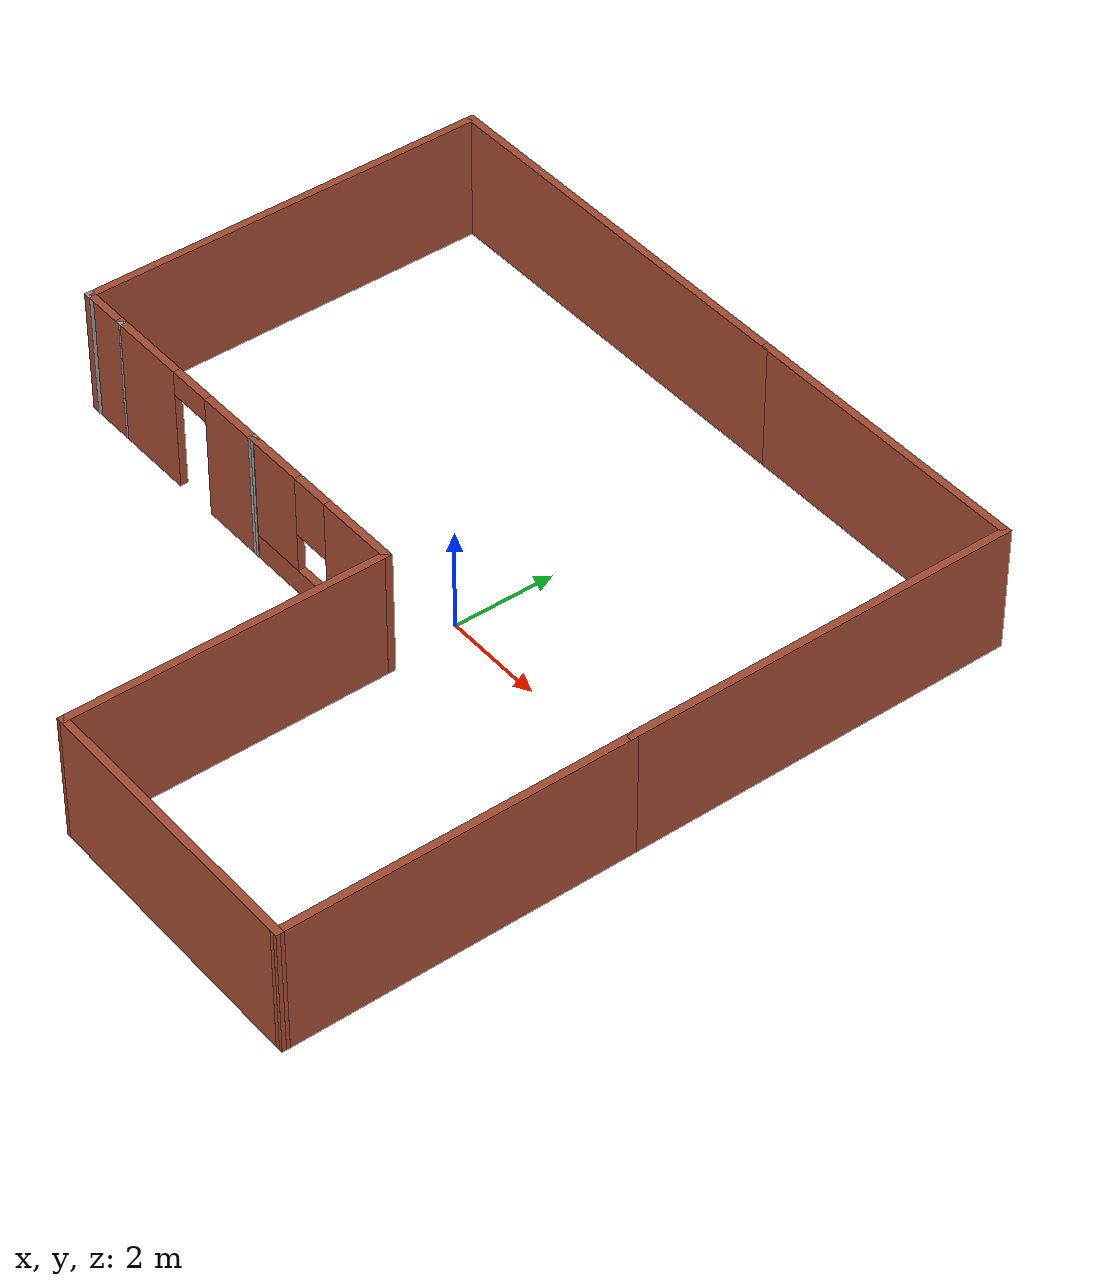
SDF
<?xml version='1.0'?>
<sdf version='1.6'>
  <model name='firstdemo'>
    <pose frame=''>-1.21384 -0.498173 0 0 -0 0</pose>
    <link name='Wall_14'>
      <collision name='Wall_14_Collision'>
        <geometry>
          <box>
            <size>8.25 0.15 2.5</size>
          </box>
        </geometry>
        <pose frame=''>0 0 1.25 0 -0 0</pose>
      </collision>
      <visual name='Wall_14_Visual'>
        <pose frame=''>0 0 1.25 0 -0 0</pose>
        <geometry>
          <box>
            <size>8.25 0.15 2.5</size>
          </box>
        </geometry>
        <material>
          <script>
            <uri>file://media/materials/scripts/gazebo.material</uri>
            <name>Gazebo/Bricks</name>
          </script>
          <ambient>0.996078 0.47451 0.0196078 1</ambient>
        </material>
        <meta>
          <layer>0</layer>
        </meta>
      </visual>
      <pose frame=''>-2.92516 7.11317 0 0 -0 0</pose>
    </link>
    <link name='Wall_15'>
      <collision name='Wall_15_Collision'>
        <geometry>
          <box>
            <size>6 0.15 2.5</size>
          </box>
        </geometry>
        <pose frame=''>0 0 1.25 0 -0 0</pose>
      </collision>
      <visual name='Wall_15_Visual'>
        <pose frame=''>0 0 1.25 0 -0 0</pose>
        <geometry>
          <box>
            <size>6 0.15 2.5</size>
          </box>
        </geometry>
        <material>
          <script>
            <uri>file://media/materials/scripts/gazebo.material</uri>
            <name>Gazebo/Bricks</name>
          </script>
          <ambient>0.996078 0.47451 0.0196078 1</ambient>
        </material>
        <meta>
          <layer>0</layer>
        </meta>
      </visual>
      <pose frame=''>4.04984 7.11317 0 0 -0 0</pose>
    </link>
    <link name='Wall_16'>
      <collision name='Wall_16_Collision'>
        <geometry>
          <box>
            <size>7.776 0.15 2.5</size>
          </box>
        </geometry>
        <pose frame=''>0 0 1.25 0 -0 0</pose>
      </collision>
      <visual name='Wall_16_Visual'>
        <pose frame=''>0 0 1.25 0 -0 0</pose>
        <geometry>
          <box>
            <size>7.776 0.15 2.5</size>
          </box>
        </geometry>
        <material>
          <script>
            <uri>file://media/materials/scripts/gazebo.material</uri>
            <name>Gazebo/Bricks</name>
          </script>
          <ambient>0.996078 0.47451 0.0196078 1</ambient>
        </material>
        <meta>
          <layer>0</layer>
        </meta>
      </visual>
      <pose frame=''>6.97484 3.30017 0 0 -0 -1.5708</pose>
    </link>
    <link name='Wall_17'>
      <collision name='Wall_17_Collision'>
        <geometry>
          <box>
            <size>6.75006 0.15 2.5</size>
          </box>
        </geometry>
        <pose frame=''>0 0 1.25 0 -0 0</pose>
      </collision>
      <visual name='Wall_17_Visual'>
        <pose frame=''>0 0 1.25 0 -0 0</pose>
        <geometry>
          <box>
            <size>6.75006 0.15 2.5</size>
          </box>
        </geometry>
        <material>
          <script>
            <uri>file://media/materials/scripts/gazebo.material</uri>
            <name>Gazebo/Bricks</name>
          </script>
          <ambient>0.996078 0.47451 0.0196078 1</ambient>
        </material>
        <meta>
          <layer>0</layer>
        </meta>
      </visual>
      <pose frame=''>6.97484 -3.81283 0 0 -0 -1.5708</pose>
    </link>
    <link name='Wall_18'>
      <collision name='Wall_18_Collision'>
        <geometry>
          <box>
            <size>5.75 0.15 2.5</size>
          </box>
        </geometry>
        <pose frame=''>0 0 1.25 0 -0 0</pose>
      </collision>
      <visual name='Wall_18_Visual'>
        <pose frame=''>0 0 1.25 0 -0 0</pose>
        <geometry>
          <box>
            <size>5.75 0.15 2.5</size>
          </box>
        </geometry>
        <material>
          <script>
            <uri>file://media/materials/scripts/gazebo.material</uri>
            <name>Gazebo/Bricks</name>
          </script>
          <ambient>0.996078 0.47451 0.0196078 1</ambient>
        </material>
        <meta>
          <layer>0</layer>
        </meta>
      </visual>
      <pose frame=''>4.17484 -7.09983 0 0 -0 3.13695</pose>
    </link>
    <link name='Wall_19'>
      <collision name='Wall_19_Collision'>
        <geometry>
          <box>
            <size>6.25 0.15 2.5</size>
          </box>
        </geometry>
        <pose frame=''>0 0 1.25 0 -0 0</pose>
      </collision>
      <visual name='Wall_19_Visual'>
        <pose frame=''>0 0 1.25 0 -0 0</pose>
        <geometry>
          <box>
            <size>6.25 0.15 2.5</size>
          </box>
        </geometry>
        <material>
          <script>
            <uri>file://media/materials/scripts/gazebo.material</uri>
            <name>Gazebo/Bricks</name>
          </script>
          <ambient>0.996078 0.47451 0.0196078 1</ambient>
        </material>
        <meta>
          <layer>0</layer>
        </meta>
      </visual>
      <pose frame=''>1.37484 -4.03683 0 0 -0 1.5708</pose>
    </link>
    <link name='Wall_20'>
      <pose frame=''>-0.425158 -0.986827 0 0 -0 3.14159</pose>
      <visual name='Wall_20_Visual_0'>
        <pose frame=''>-1.04992 0 1.25 0 -0 0</pose>
        <geometry>
          <box>
            <size>1.65016 0.15 2.5</size>
          </box>
        </geometry>
        <material>
          <script>
            <uri>file://media/materials/scripts/gazebo.material</uri>
            <name>Gazebo/Bricks</name>
          </script>
          <ambient>0.996078 0.47451 0.0196078 1</ambient>
        </material>
        <meta>
          <layer>0</layer>
        </meta>
      </visual>
      <collision name='Wall_20_Collision_0'>
        <geometry>
          <box>
            <size>1.65016 0.15 2.5</size>
          </box>
        </geometry>
        <pose frame=''>-1.04992 0 1.25 0 -0 0</pose>
      </collision>
      <visual name='Wall_20_Visual_1'>
        <pose frame=''>0.825082 0 0.25 0 -0 0</pose>
        <geometry>
          <box>
            <size>2.09984 0.15 0.5</size>
          </box>
        </geometry>
        <material>
          <script>
            <uri>file://media/materials/scripts/gazebo.material</uri>
            <name>Gazebo/Bricks</name>
          </script>
          <ambient>0.996078 0.47451 0.0196078 1</ambient>
        </material>
        <meta>
          <layer>0</layer>
        </meta>
      </visual>
      <collision name='Wall_20_Collision_1'>
        <geometry>
          <box>
            <size>2.09984 0.15 0.5</size>
          </box>
        </geometry>
        <pose frame=''>0.825082 0 0.25 0 -0 0</pose>
      </collision>
      <visual name='Wall_20_Visual_2'>
        <pose frame=''>1.22508 0 1.5 0 -0 0</pose>
        <geometry>
          <box>
            <size>1.29984 0.15 2</size>
          </box>
        </geometry>
        <material>
          <script>
            <uri>file://media/materials/scripts/gazebo.material</uri>
            <name>Gazebo/Bricks</name>
          </script>
          <ambient>0.996078 0.47451 0.0196078 1</ambient>
        </material>
        <meta>
          <layer>0</layer>
        </meta>
      </visual>
      <collision name='Wall_20_Collision_2'>
        <geometry>
          <box>
            <size>1.29984 0.15 2</size>
          </box>
        </geometry>
        <pose frame=''>1.22508 0 1.5 0 -0 0</pose>
      </collision>
      <visual name='Wall_20_Visual_3'>
        <pose frame=''>0.175164 0 1.9 0 -0 0</pose>
        <geometry>
          <box>
            <size>0.8 0.15 1.2</size>
          </box>
        </geometry>
        <material>
          <script>
            <uri>file://media/materials/scripts/gazebo.material</uri>
            <name>Gazebo/Bricks</name>
          </script>
          <ambient>0.996078 0.47451 0.0196078 1</ambient>
        </material>
        <meta>
          <layer>0</layer>
        </meta>
      </visual>
      <collision name='Wall_20_Collision_3'>
        <geometry>
          <box>
            <size>0.8 0.15 1.2</size>
          </box>
        </geometry>
        <pose frame=''>0.175164 0 1.9 0 -0 0</pose>
      </collision>
    </link>
    <link name='Wall_21'>
      <collision name='Wall_21_Collision'>
        <geometry>
          <box>
            <size>0.16 0.15 2.5</size>
          </box>
        </geometry>
        <pose frame=''>0 0 1.25 0 -0 0</pose>
      </collision>
      <visual name='Wall_21_Visual'>
        <pose frame=''>0 0 1.25 0 -0 0</pose>
        <geometry>
          <box>
            <size>0.16 0.15 2.5</size>
          </box>
        </geometry>
        <material>
          <script>
            <uri>file://media/materials/scripts/gazebo.material</uri>
            <name>Gazebo/Grey</name>
          </script>
          <ambient>1 1 1 1</ambient>
        </material>
        <meta>
          <layer>0</layer>
        </meta>
      </visual>
      <pose frame=''>-2.22017 -0.986856 0 0 -0 -0.005994</pose>
    </link>
    <link name='Wall_22'>
      <collision name='Wall_22_Collision'>
        <geometry>
          <box>
            <size>0.16 0.15 2.5</size>
          </box>
        </geometry>
        <pose frame=''>0 0 1.25 0 -0 0</pose>
      </collision>
      <visual name='Wall_22_Visual'>
        <pose frame=''>0 0 1.25 0 -0 0</pose>
        <geometry>
          <box>
            <size>0.16 0.15 2.5</size>
          </box>
        </geometry>
        <material>
          <script>
            <uri>file://media/materials/scripts/gazebo.material</uri>
            <name>Gazebo/Grey</name>
          </script>
          <ambient>1 1 1 1</ambient>
        </material>
        <meta>
          <layer>0</layer>
        </meta>
      </visual>
      <pose frame=''>-2.21017 -0.986856 0 0 -0 0.00597</pose>
    </link>
    <link name='Wall_23'>
      <collision name='Wall_23_Collision'>
        <geometry>
          <box>
            <size>0.16 0.15 2.5</size>
          </box>
        </geometry>
        <pose frame=''>0 0 1.25 0 -0 0</pose>
      </collision>
      <visual name='Wall_23_Visual'>
        <pose frame=''>0 0 1.25 0 -0 0</pose>
        <geometry>
          <box>
            <size>0.16 0.15 2.5</size>
          </box>
        </geometry>
        <material>
          <script>
            <uri>file://media/materials/scripts/gazebo.material</uri>
            <name>Gazebo/Grey</name>
          </script>
          <ambient>1 1 1 1</ambient>
        </material>
        <meta>
          <layer>0</layer>
        </meta>
      </visual>
      <pose frame=''>-2.21017 -0.986856 0 0 -0 -3.13562</pose>
    </link>
    <link name='Wall_28'>
      <pose frame=''>-4.13016 -0.986827 0 0 -0 3.14159</pose>
      <visual name='Wall_28_Visual_0'>
        <pose frame=''>-1.30311 0 1.25 0 -0 0</pose>
        <geometry>
          <box>
            <size>1.39377 0.15 2.5</size>
          </box>
        </geometry>
        <material>
          <script>
            <uri>file://media/materials/scripts/gazebo.material</uri>
            <name>Gazebo/Bricks</name>
          </script>
          <ambient>0.996078 0.47451 0.0196078 1</ambient>
        </material>
        <meta>
          <layer>0</layer>
        </meta>
      </visual>
      <collision name='Wall_28_Collision_0'>
        <geometry>
          <box>
            <size>1.39377 0.15 2.5</size>
          </box>
        </geometry>
        <pose frame=''>-1.30311 0 1.25 0 -0 0</pose>
      </collision>
      <visual name='Wall_28_Visual_1'>
        <pose frame=''>1.14689 0 1.25 0 -0 0</pose>
        <geometry>
          <box>
            <size>1.70623 0.15 2.5</size>
          </box>
        </geometry>
        <material>
          <script>
            <uri>file://media/materials/scripts/gazebo.material</uri>
            <name>Gazebo/Bricks</name>
          </script>
          <ambient>0.996078 0.47451 0.0196078 1</ambient>
        </material>
        <meta>
          <layer>0</layer>
        </meta>
      </visual>
      <collision name='Wall_28_Collision_1'>
        <geometry>
          <box>
            <size>1.70623 0.15 2.5</size>
          </box>
        </geometry>
        <pose frame=''>1.14689 0 1.25 0 -0 0</pose>
      </collision>
      <visual name='Wall_28_Visual_2'>
        <pose frame=''>-0.156229 0 2.25 0 -0 0</pose>
        <geometry>
          <box>
            <size>0.9 0.15 0.5</size>
          </box>
        </geometry>
        <material>
          <script>
            <uri>file://media/materials/scripts/gazebo.material</uri>
            <name>Gazebo/Bricks</name>
          </script>
          <ambient>0.996078 0.47451 0.0196078 1</ambient>
        </material>
        <meta>
          <layer>0</layer>
        </meta>
      </visual>
      <collision name='Wall_28_Collision_2'>
        <geometry>
          <box>
            <size>0.9 0.15 0.5</size>
          </box>
        </geometry>
        <pose frame=''>-0.156229 0 2.25 0 -0 0</pose>
      </collision>
    </link>
    <link name='Wall_29'>
      <collision name='Wall_29_Collision'>
        <geometry>
          <box>
            <size>0.15 0.15 2.5</size>
          </box>
        </geometry>
        <pose frame=''>0 0 1.25 0 -0 0</pose>
      </collision>
      <visual name='Wall_29_Visual'>
        <pose frame=''>0 0 1.25 0 -0 0</pose>
        <geometry>
          <box>
            <size>0.15 0.15 2.5</size>
          </box>
        </geometry>
        <material>
          <script>
            <uri>file://media/materials/scripts/gazebo.material</uri>
            <name>Gazebo/Grey</name>
          </script>
          <ambient>1 1 1 1</ambient>
        </material>
        <meta>
          <layer>0</layer>
        </meta>
      </visual>
      <pose frame=''>-6.05516 -0.986827 0 0 -0 0</pose>
    </link>
    <link name='Wall_31'>
      <collision name='Wall_31_Collision'>
        <geometry>
          <box>
            <size>0.947696 0.15 2.5</size>
          </box>
        </geometry>
        <pose frame=''>0 0 1.25 0 -0 0</pose>
      </collision>
      <visual name='Wall_31_Visual'>
        <pose frame=''>0 0 1.25 0 -0 0</pose>
        <geometry>
          <box>
            <size>0.947696 0.15 2.5</size>
          </box>
        </geometry>
        <material>
          <script>
            <uri>file://media/materials/scripts/gazebo.material</uri>
            <name>Gazebo/Bricks</name>
          </script>
          <ambient>0.996078 0.47451 0.0196078 1</ambient>
        </material>
        <meta>
          <layer>0</layer>
        </meta>
      </visual>
      <pose frame=''>-6.45416 -0.986827 0 0 -0 3.14159</pose>
    </link>
    <link name='Wall_32'>
      <collision name='Wall_32_Collision'>
        <geometry>
          <box>
            <size>0.15 0.15 2.5</size>
          </box>
        </geometry>
        <pose frame=''>0 0 1.25 0 -0 0</pose>
      </collision>
      <visual name='Wall_32_Visual'>
        <pose frame=''>0 0 1.25 0 -0 0</pose>
        <geometry>
          <box>
            <size>0.15 0.15 2.5</size>
          </box>
        </geometry>
        <material>
          <script>
            <uri>file://media/materials/scripts/gazebo.material</uri>
            <name>Gazebo/Grey</name>
          </script>
          <ambient>1 1 1 1</ambient>
        </material>
        <meta>
          <layer>0</layer>
        </meta>
      </visual>
      <pose frame=''>-6.85316 -0.986827 0 0 -0 0</pose>
    </link>
    <link name='Wall_36'>
      <collision name='Wall_36_Collision'>
        <geometry>
          <box>
            <size>8.25 0.15 2.5</size>
          </box>
        </geometry>
        <pose frame=''>0 0 1.25 0 -0 0</pose>
      </collision>
      <visual name='Wall_36_Visual'>
        <pose frame=''>0 0 1.25 0 -0 0</pose>
        <geometry>
          <box>
            <size>8.25 0.15 2.5</size>
          </box>
        </geometry>
        <material>
          <script>
            <uri>file://media/materials/scripts/gazebo.material</uri>
            <name>Gazebo/Bricks</name>
          </script>
          <ambient>0.996078 0.47451 0.0196078 1</ambient>
        </material>
        <meta>
          <layer>0</layer>
        </meta>
      </visual>
      <pose frame=''>-6.97516 3.06317 0 0 -0 -1.5708</pose>
    </link>
    <link name='Wall_37'>
      <collision name='Wall_37_Collision'>
        <geometry>
          <box>
            <size>0.15 0.15 2.5</size>
          </box>
        </geometry>
        <pose frame=''>0 0 1.25 0 -0 0</pose>
      </collision>
      <visual name='Wall_37_Visual'>
        <pose frame=''>0 0 1.25 0 -0 0</pose>
        <geometry>
          <box>
            <size>0.15 0.15 2.5</size>
          </box>
        </geometry>
        <material>
          <script>
            <uri>file://media/materials/scripts/gazebo.material</uri>
            <name>Gazebo/Grey</name>
          </script>
          <ambient>1 1 1 1</ambient>
        </material>
        <meta>
          <layer>0</layer>
        </meta>
      </visual>
      <pose frame=''>-6.97516 -0.986827 0 0 -0 0</pose>
    </link>
    <static>1</static>
  </model>
</sdf>
